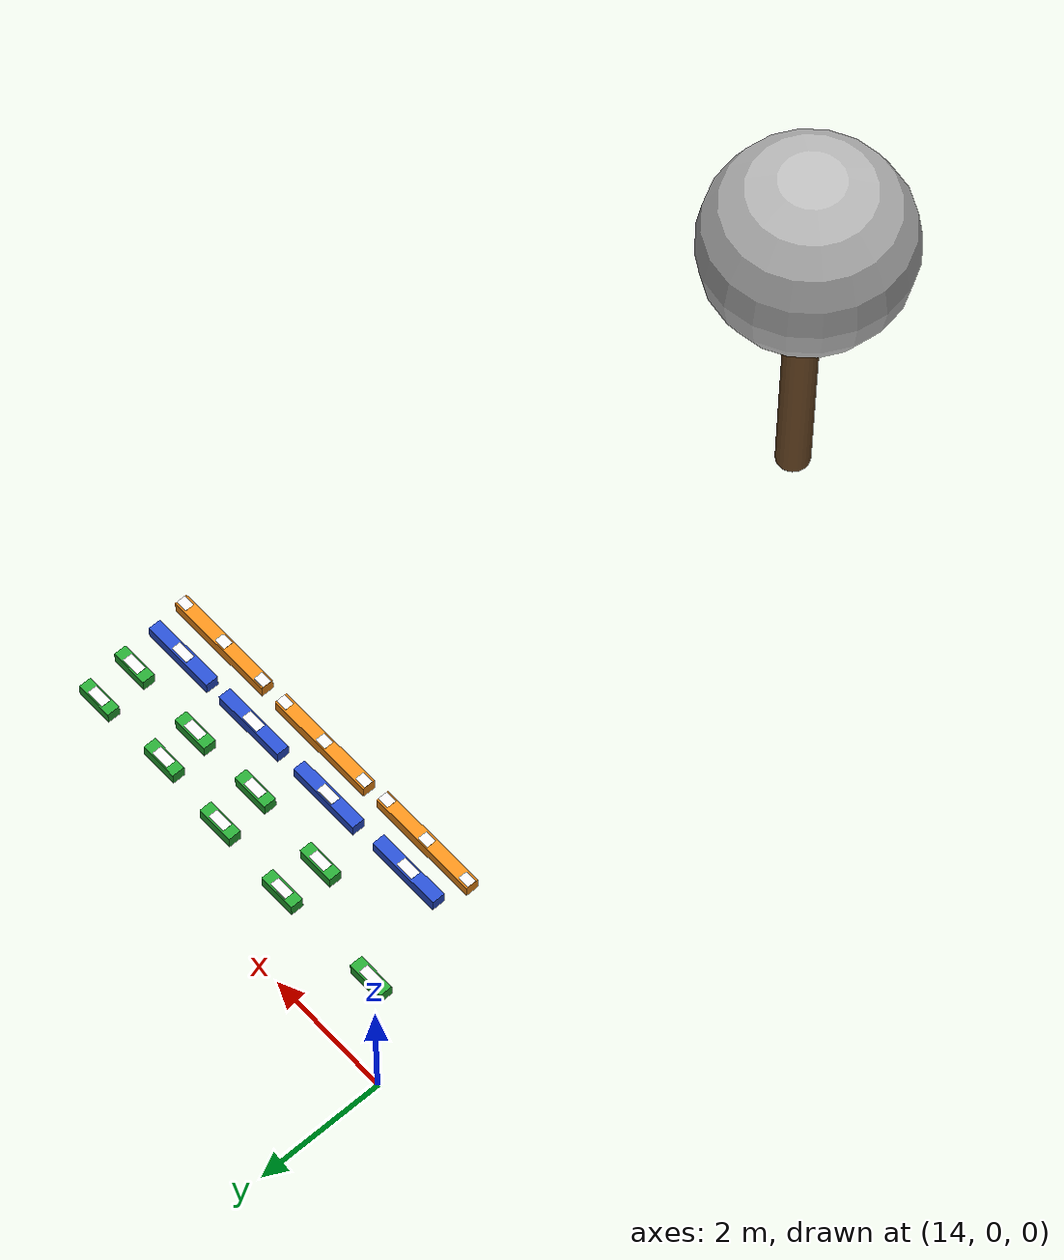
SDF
<sdf version="1.6">
 <world name="default">
  <model name="tree_simple_1">
   <static>1</static>
   <link name="link">
    <pose>0 0 0.1 0 -0 0</pose>
    <inertial>
     <mass>666</mass>
     <inertia>
      <ixx>0.0861167</ixx>
      <ixy>0</ixy>
      <ixz>0</ixz>
      <iyy>0.0861167</iyy>
      <iyz>0</iyz>
      <izz>0.0861167</izz>
     </inertia>
    </inertial>
    <collision name="collision_trunk">
     <pose>0 0 2 0 -0 0</pose>
     <geometry><cylinder><radius>0.25</radius><length>4</length></cylinder></geometry>
     <surface>
      <contact>
       <poissons_ratio>0.347</poissons_ratio>
       <elastic_modulus>8.8e+09</elastic_modulus>
       <ode><kp>100000</kp><kd>100</kd><max_vel>100</max_vel><min_depth>0.001</min_depth></ode>
      </contact>
      <friction>
       <torsional>
        <coefficient>1</coefficient>
        <use_patch_radius>0</use_patch_radius>
        <surface_radius>0.01</surface_radius>
       </torsional>
      </friction>
     </surface>
    </collision>
    <collision name="collision_treetop">
     <pose>0 0 5.2 0 -0 0</pose>
     <geometry><sphere><radius>1.5</radius></sphere></geometry>
     <surface>
      <contact>
       <poissons_ratio>0.347</poissons_ratio>
       <elastic_modulus>8.8e+09</elastic_modulus>
       <ode><kp>100000</kp><kd>100</kd><max_vel>100</max_vel><min_depth>0.001</min_depth></ode>
      </contact>
      <friction>
       <torsional>
        <coefficient>1</coefficient>
        <use_patch_radius>0</use_patch_radius>
        <surface_radius>0.01</surface_radius>
       </torsional>
      </friction>
     </surface>
    </collision>
    <visual name="trunk">
     <pose>0 0 2 0 -0 0</pose>
     <geometry><cylinder><radius>0.25</radius><length>4</length></cylinder></geometry>
     <material>
      <script>
       <uri>model://tree_simple/scripts</uri>
       <uri>model://tree_simple/materials/textures</uri>
       <name>TreeSimple/Trunk</name>
      </script>
     </material>
    </visual>
    <visual name="treetop">
     <pose>0 0 5.2 0 -0 0</pose>
     <geometry><sphere><radius>1.5</radius></sphere></geometry>
     <material>
      <script>
       <uri>model://tree_simple/scripts</uri>
       <uri>model://tree_simple/materials/textures</uri>
       <name>TreeSimple/Treetop</name>
      </script>
     </material>
    </visual>
   </link>
   <pose>17.4154 -10.567 0 0 -0 0</pose>
  </model>
  <model name="mbzirc_orange_brick_0">
   <static>0</static>
   <link name="link">
    <pose>0 0 0.1 0 -0 0</pose>
    <inertial>
     <mass>1.2</mass>
     <inertia>
      <ixx>0.007968</ixx>
      <ixy>0</ixy>
      <ixz>0</ixz>
      <iyy>0.326688</iyy>
      <iyz>0</iyz>
      <izz>0.326688</izz>
     </inertia>
    </inertial>
    <visual name="main_box">
     <geometry><box><size>1.8 0.2 0.2</size></box></geometry>
     <material>
      <script><uri>file://media/materials/scripts/gazebo.material</uri><name>Gazebo/Orange</name></script>
     </material>
    </visual>
    <visual name="white_plate_center">
     <pose>0 0 0.1 0 -0 0</pose>
     <geometry><box><size>0.19 0.15 0.006</size></box></geometry>
     <material>
      <script><uri>file://media/materials/scripts/gazebo.material</uri><name>Gazebo/White</name></script>
     </material>
    </visual>
    <visual name="white_plate_left">
     <pose>-0.805 0 0.1 0 -0 0</pose>
     <geometry><box><size>0.19 0.15 0.006</size></box></geometry>
     <material>
      <script><uri>file://media/materials/scripts/gazebo.material</uri><name>Gazebo/White</name></script>
     </material>
    </visual>
    <visual name="white_plate_right">
     <pose>0.805 0 0.1 0 -0 0</pose>
     <geometry><box><size>0.19 0.15 0.006</size></box></geometry>
     <material>
      <script><uri>file://media/materials/scripts/gazebo.material</uri><name>Gazebo/White</name></script>
     </material>
    </visual>
    <collision name="collision"><geometry><box><size>1.8 0.2 0.2</size></box></geometry></collision>
   </link>
   <pose>16.2189 -2.79877 -5.3e-05 -0.000474 -0 -0.000656</pose>
  </model>
  <model name="mbzirc_orange_brick_1">
   <static>0</static>
   <link name="link">
    <pose>0 0 0.1 0 -0 0</pose>
    <inertial>
     <mass>1.2</mass>
     <inertia>
      <ixx>0.007968</ixx>
      <ixy>0</ixy>
      <ixz>0</ixz>
      <iyy>0.326688</iyy>
      <iyz>0</iyz>
      <izz>0.326688</izz>
     </inertia>
    </inertial>
    <visual name="main_box">
     <geometry><box><size>1.8 0.2 0.2</size></box></geometry>
     <material>
      <script><uri>file://media/materials/scripts/gazebo.material</uri><name>Gazebo/Orange</name></script>
     </material>
    </visual>
    <visual name="white_plate_center">
     <pose>0 0 0.1 0 -0 0</pose>
     <geometry><box><size>0.19 0.15 0.006</size></box></geometry>
     <material>
      <script><uri>file://media/materials/scripts/gazebo.material</uri><name>Gazebo/White</name></script>
     </material>
    </visual>
    <visual name="white_plate_left">
     <pose>-0.805 0 0.1 0 -0 0</pose>
     <geometry><box><size>0.19 0.15 0.006</size></box></geometry>
     <material>
      <script><uri>file://media/materials/scripts/gazebo.material</uri><name>Gazebo/White</name></script>
     </material>
    </visual>
    <visual name="white_plate_right">
     <pose>0.805 0 0.1 0 -0 0</pose>
     <geometry><box><size>0.19 0.15 0.006</size></box></geometry>
     <material>
      <script><uri>file://media/materials/scripts/gazebo.material</uri><name>Gazebo/White</name></script>
     </material>
    </visual>
    <collision name="collision"><geometry><box><size>1.8 0.2 0.2</size></box></geometry></collision>
   </link>
   <pose>18.2603 -2.76818 -5.3e-05 -0.000474 -0 0.001065</pose>
  </model>
  <model name="mbzirc_orange_brick_2">
   <static>0</static>
   <link name="link">
    <pose>0 0 0.1 0 -0 0</pose>
    <inertial>
     <mass>1.2</mass>
     <inertia>
      <ixx>0.007968</ixx>
      <ixy>0</ixy>
      <ixz>0</ixz>
      <iyy>0.326688</iyy>
      <iyz>0</iyz>
      <izz>0.326688</izz>
     </inertia>
    </inertial>
    <visual name="main_box">
     <geometry><box><size>1.8 0.2 0.2</size></box></geometry>
     <material>
      <script><uri>file://media/materials/scripts/gazebo.material</uri><name>Gazebo/Orange</name></script>
     </material>
    </visual>
    <visual name="white_plate_center">
     <pose>0 0 0.1 0 -0 0</pose>
     <geometry><box><size>0.19 0.15 0.006</size></box></geometry>
     <material>
      <script><uri>file://media/materials/scripts/gazebo.material</uri><name>Gazebo/White</name></script>
     </material>
    </visual>
    <visual name="white_plate_left">
     <pose>-0.805 0 0.1 0 -0 0</pose>
     <geometry><box><size>0.19 0.15 0.006</size></box></geometry>
     <material>
      <script><uri>file://media/materials/scripts/gazebo.material</uri><name>Gazebo/White</name></script>
     </material>
    </visual>
    <visual name="white_plate_right">
     <pose>0.805 0 0.1 0 -0 0</pose>
     <geometry><box><size>0.19 0.15 0.006</size></box></geometry>
     <material>
      <script><uri>file://media/materials/scripts/gazebo.material</uri><name>Gazebo/White</name></script>
     </material>
    </visual>
    <collision name="collision"><geometry><box><size>1.8 0.2 0.2</size></box></geometry></collision>
   </link>
   <pose>20.3372 -2.76467 -5.3e-05 0.000474 -0 0.00076</pose>
  </model>
  <model name="mbzirc_blue_brick">
   <static>0</static>
   <link name="link">
    <pose>0 0 0.1 0 -0 0</pose>
    <inertial>
     <mass>0.381</mass>
     <inertia>
      <ixx>0.00252984</ixx>
      <ixy>0</ixy>
      <ixz>0</ixz>
      <iyy>0.046802</iyy>
      <iyz>0</iyz>
      <izz>0.046802</izz>
     </inertia>
    </inertial>
    <visual name="main_box">
     <geometry><box><size>1.2 0.2 0.2</size></box></geometry>
     <material>
      <script><uri>file://media/materials/scripts/gazebo.material</uri><name>Gazebo/Blue</name></script>
     </material>
    </visual>
    <visual name="white_plate">
     <pose>0 0 0.1 0 -0 0</pose>
     <geometry><box><size>0.3 0.15 0.006</size></box></geometry>
     <material>
      <script><uri>file://media/materials/scripts/gazebo.material</uri><name>Gazebo/White</name></script>
     </material>
    </visual>
    <collision name="collision"><geometry><box><size>1.2 0.2 0.2</size></box></geometry></collision>
   </link>
   <pose>20.5722 -2.24389 -5.3e-05 -0.000475 -0 0.001008</pose>
  </model>
  <model name="mbzirc_blue_brick_0">
   <static>0</static>
   <link name="link">
    <pose>0 0 0.1 0 -0 0</pose>
    <inertial>
     <mass>0.381</mass>
     <inertia>
      <ixx>0.00252984</ixx>
      <ixy>0</ixy>
      <ixz>0</ixz>
      <iyy>0.046802</iyy>
      <iyz>0</iyz>
      <izz>0.046802</izz>
     </inertia>
    </inertial>
    <visual name="main_box">
     <geometry><box><size>1.2 0.2 0.2</size></box></geometry>
     <material>
      <script><uri>file://media/materials/scripts/gazebo.material</uri><name>Gazebo/Blue</name></script>
     </material>
    </visual>
    <visual name="white_plate">
     <pose>0 0 0.1 0 -0 0</pose>
     <geometry><box><size>0.3 0.15 0.006</size></box></geometry>
     <material>
      <script><uri>file://media/materials/scripts/gazebo.material</uri><name>Gazebo/White</name></script>
     </material>
    </visual>
    <collision name="collision"><geometry><box><size>1.2 0.2 0.2</size></box></geometry></collision>
   </link>
   <pose>19.1239 -2.2571 -5.3e-05 0.000475 -0 0.000988</pose>
  </model>
  <model name="mbzirc_blue_brick_1">
   <static>0</static>
   <link name="link">
    <pose>0 0 0.1 0 -0 0</pose>
    <inertial>
     <mass>0.381</mass>
     <inertia>
      <ixx>0.00252984</ixx>
      <ixy>0</ixy>
      <ixz>0</ixz>
      <iyy>0.046802</iyy>
      <iyz>0</iyz>
      <izz>0.046802</izz>
     </inertia>
    </inertial>
    <visual name="main_box">
     <geometry><box><size>1.2 0.2 0.2</size></box></geometry>
     <material>
      <script><uri>file://media/materials/scripts/gazebo.material</uri><name>Gazebo/Blue</name></script>
     </material>
    </visual>
    <visual name="white_plate">
     <pose>0 0 0.1 0 -0 0</pose>
     <geometry><box><size>0.3 0.15 0.006</size></box></geometry>
     <material>
      <script><uri>file://media/materials/scripts/gazebo.material</uri><name>Gazebo/White</name></script>
     </material>
    </visual>
    <collision name="collision"><geometry><box><size>1.2 0.2 0.2</size></box></geometry></collision>
   </link>
   <pose>17.6106 -2.27652 -5.3e-05 -0.000475 -0 0.000973</pose>
  </model>
  <model name="mbzirc_blue_brick_2">
   <static>0</static>
   <link name="link">
    <pose>0 0 0.1 0 -0 0</pose>
    <inertial>
     <mass>0.381</mass>
     <inertia>
      <ixx>0.00252984</ixx>
      <ixy>0</ixy>
      <ixz>0</ixz>
      <iyy>0.046802</iyy>
      <iyz>0</iyz>
      <izz>0.046802</izz>
     </inertia>
    </inertial>
    <visual name="main_box">
     <geometry><box><size>1.2 0.2 0.2</size></box></geometry>
     <material>
      <script><uri>file://media/materials/scripts/gazebo.material</uri><name>Gazebo/Blue</name></script>
     </material>
    </visual>
    <visual name="white_plate">
     <pose>0 0 0.1 0 -0 0</pose>
     <geometry><box><size>0.3 0.15 0.006</size></box></geometry>
     <material>
      <script><uri>file://media/materials/scripts/gazebo.material</uri><name>Gazebo/White</name></script>
     </material>
    </visual>
    <collision name="collision"><geometry><box><size>1.2 0.2 0.2</size></box></geometry></collision>
   </link>
   <pose>16.0556 -2.32743 -5.3e-05 0.000475 -0 0.000621</pose>
  </model>
  <model name="mbzirc_green_brick">
   <static>0</static>
   <link name="link">
    <pose>0 0 0.1 0 -0 0</pose>
    <inertial>
     <mass>0.485</mass>
     <inertia>
      <ixx>0.00322</ixx>
      <ixy>0</ixy>
      <ixz>0</ixz>
      <iyy>0.016102</iyy>
      <iyz>0</iyz>
      <izz>0.016102</izz>
     </inertia>
    </inertial>
    <visual name="main_box">
     <geometry><box><size>0.6 0.2 0.2</size></box></geometry>
     <material>
      <script><uri>file://media/materials/scripts/gazebo.material</uri><name>Gazebo/Green</name></script>
     </material>
    </visual>
    <visual name="white_plate">
     <pose>0 0 0.1 0 -0 0</pose>
     <geometry><box><size>0.3 0.15 0.006</size></box></geometry>
     <material>
      <script><uri>file://media/materials/scripts/gazebo.material</uri><name>Gazebo/White</name></script>
     </material>
    </visual>
    <collision name="collision"><geometry><box><size>0.6 0.2 0.2</size></box></geometry></collision>
   </link>
   <pose>20.8728 -1.63719 0 0.000121 -0 -3e-06</pose>
  </model>
  <model name="mbzirc_green_brick_0">
   <static>0</static>
   <link name="link">
    <pose>0 0 0.1 0 -0 0</pose>
    <inertial>
     <mass>0.485</mass>
     <inertia>
      <ixx>0.00322</ixx>
      <ixy>0</ixy>
      <ixz>0</ixz>
      <iyy>0.016102</iyy>
      <iyz>0</iyz>
      <izz>0.016102</izz>
     </inertia>
    </inertial>
    <visual name="main_box">
     <geometry><box><size>0.6 0.2 0.2</size></box></geometry>
     <material>
      <script><uri>file://media/materials/scripts/gazebo.material</uri><name>Gazebo/Green</name></script>
     </material>
    </visual>
    <visual name="white_plate">
     <pose>0 0 0.1 0 -0 0</pose>
     <geometry><box><size>0.3 0.15 0.006</size></box></geometry>
     <material>
      <script><uri>file://media/materials/scripts/gazebo.material</uri><name>Gazebo/White</name></script>
     </material>
    </visual>
    <collision name="collision"><geometry><box><size>0.6 0.2 0.2</size></box></geometry></collision>
   </link>
   <pose>19.5458 -1.58948 -5.3e-05 0.000482 -1e-06 0</pose>
  </model>
  <model name="mbzirc_green_brick_2">
   <static>0</static>
   <link name="link">
    <pose>0 0 0.1 0 -0 0</pose>
    <inertial>
     <mass>0.485</mass>
     <inertia>
      <ixx>0.00322</ixx>
      <ixy>0</ixy>
      <ixz>0</ixz>
      <iyy>0.016102</iyy>
      <iyz>0</iyz>
      <izz>0.016102</izz>
     </inertia>
    </inertial>
    <visual name="main_box">
     <geometry><box><size>0.6 0.2 0.2</size></box></geometry>
     <material>
      <script><uri>file://media/materials/scripts/gazebo.material</uri><name>Gazebo/Green</name></script>
     </material>
    </visual>
    <visual name="white_plate">
     <pose>0 0 0.1 0 -0 0</pose>
     <geometry><box><size>0.3 0.15 0.006</size></box></geometry>
     <material>
      <script><uri>file://media/materials/scripts/gazebo.material</uri><name>Gazebo/White</name></script>
     </material>
    </visual>
    <collision name="collision"><geometry><box><size>0.6 0.2 0.2</size></box></geometry></collision>
   </link>
   <pose>18.3299 -1.60984 0 0.000121 -0 -3e-06</pose>
  </model>
  <model name="mbzirc_green_brick_4">
   <static>0</static>
   <link name="link">
    <pose>0 0 0.1 0 -0 0</pose>
    <inertial>
     <mass>0.485</mass>
     <inertia>
      <ixx>0.00322</ixx>
      <ixy>0</ixy>
      <ixz>0</ixz>
      <iyy>0.016102</iyy>
      <iyz>0</iyz>
      <izz>0.016102</izz>
     </inertia>
    </inertial>
    <visual name="main_box">
     <geometry><box><size>0.6 0.2 0.2</size></box></geometry>
     <material>
      <script><uri>file://media/materials/scripts/gazebo.material</uri><name>Gazebo/Green</name></script>
     </material>
    </visual>
    <visual name="white_plate">
     <pose>0 0 0.1 0 -0 0</pose>
     <geometry><box><size>0.3 0.15 0.006</size></box></geometry>
     <material>
      <script><uri>file://media/materials/scripts/gazebo.material</uri><name>Gazebo/White</name></script>
     </material>
    </visual>
    <collision name="collision"><geometry><box><size>0.6 0.2 0.2</size></box></geometry></collision>
   </link>
   <pose>16.918 -1.53718 -5.3e-05 -0.000482 -1e-06 0</pose>
  </model>
  <model name="mbzirc_green_brick_5">
   <static>0</static>
   <link name="link">
    <pose>0 0 0.1 0 -0 0</pose>
    <inertial>
     <mass>0.485</mass>
     <inertia>
      <ixx>0.00322</ixx>
      <ixy>0</ixy>
      <ixz>0</ixz>
      <iyy>0.016102</iyy>
      <iyz>0</iyz>
      <izz>0.016102</izz>
     </inertia>
    </inertial>
    <visual name="main_box">
     <geometry><box><size>0.6 0.2 0.2</size></box></geometry>
     <material>
      <script><uri>file://media/materials/scripts/gazebo.material</uri><name>Gazebo/Green</name></script>
     </material>
    </visual>
    <visual name="white_plate">
     <pose>0 0 0.1 0 -0 0</pose>
     <geometry><box><size>0.3 0.15 0.006</size></box></geometry>
     <material>
      <script><uri>file://media/materials/scripts/gazebo.material</uri><name>Gazebo/White</name></script>
     </material>
    </visual>
    <collision name="collision"><geometry><box><size>0.6 0.2 0.2</size></box></geometry></collision>
   </link>
   <pose>20.8013 -0.961535 -5.3e-05 0.000482 -1e-06 0</pose>
  </model>
  <model name="mbzirc_green_brick_6">
   <static>0</static>
   <link name="link">
    <pose>0 0 0.1 0 -0 0</pose>
    <inertial>
     <mass>0.485</mass>
     <inertia>
      <ixx>0.00322</ixx>
      <ixy>0</ixy>
      <ixz>0</ixz>
      <iyy>0.016102</iyy>
      <iyz>0</iyz>
      <izz>0.016102</izz>
     </inertia>
    </inertial>
    <visual name="main_box">
     <geometry><box><size>0.6 0.2 0.2</size></box></geometry>
     <material>
      <script><uri>file://media/materials/scripts/gazebo.material</uri><name>Gazebo/Green</name></script>
     </material>
    </visual>
    <visual name="white_plate">
     <pose>0 0 0.1 0 -0 0</pose>
     <geometry><box><size>0.3 0.15 0.006</size></box></geometry>
     <material>
      <script><uri>file://media/materials/scripts/gazebo.material</uri><name>Gazebo/White</name></script>
     </material>
    </visual>
    <collision name="collision"><geometry><box><size>0.6 0.2 0.2</size></box></geometry></collision>
   </link>
   <pose>19.5031 -1.00633 0 0.000121 -0 -3e-06</pose>
  </model>
  <model name="mbzirc_green_brick_7">
   <static>0</static>
   <link name="link">
    <pose>0 0 0.1 0 -0 0</pose>
    <inertial>
     <mass>0.485</mass>
     <inertia>
      <ixx>0.00322</ixx>
      <ixy>0</ixy>
      <ixz>0</ixz>
      <iyy>0.016102</iyy>
      <iyz>0</iyz>
      <izz>0.016102</izz>
     </inertia>
    </inertial>
    <visual name="main_box">
     <geometry><box><size>0.6 0.2 0.2</size></box></geometry>
     <material>
      <script><uri>file://media/materials/scripts/gazebo.material</uri><name>Gazebo/Green</name></script>
     </material>
    </visual>
    <visual name="white_plate">
     <pose>0 0 0.1 0 -0 0</pose>
     <geometry><box><size>0.3 0.15 0.006</size></box></geometry>
     <material>
      <script><uri>file://media/materials/scripts/gazebo.material</uri><name>Gazebo/White</name></script>
     </material>
    </visual>
    <collision name="collision"><geometry><box><size>0.6 0.2 0.2</size></box></geometry></collision>
   </link>
   <pose>18.266 -0.940514 -5.3e-05 0.000482 -1e-06 0</pose>
  </model>
  <model name="mbzirc_green_brick_8">
   <static>0</static>
   <link name="link">
    <pose>0 0 0.1 0 -0 0</pose>
    <inertial>
     <mass>0.485</mass>
     <inertia>
      <ixx>0.00322</ixx>
      <ixy>0</ixy>
      <ixz>0</ixz>
      <iyy>0.016102</iyy>
      <iyz>0</iyz>
      <izz>0.016102</izz>
     </inertia>
    </inertial>
    <visual name="main_box">
     <geometry><box><size>0.6 0.2 0.2</size></box></geometry>
     <material>
      <script><uri>file://media/materials/scripts/gazebo.material</uri><name>Gazebo/Green</name></script>
     </material>
    </visual>
    <visual name="white_plate">
     <pose>0 0 0.1 0 -0 0</pose>
     <geometry><box><size>0.3 0.15 0.006</size></box></geometry>
     <material>
      <script><uri>file://media/materials/scripts/gazebo.material</uri><name>Gazebo/White</name></script>
     </material>
    </visual>
    <collision name="collision"><geometry><box><size>0.6 0.2 0.2</size></box></geometry></collision>
   </link>
   <pose>16.9424 -0.887346 0 -0.000121 -0 3e-06</pose>
  </model>
  <model name="mbzirc_green_brick_9">
   <static>0</static>
   <link name="link">
    <pose>0 0 0.1 0 -0 0</pose>
    <inertial>
     <mass>0.485</mass>
     <inertia>
      <ixx>0.00322</ixx>
      <ixy>0</ixy>
      <ixz>0</ixz>
      <iyy>0.016102</iyy>
      <iyz>0</iyz>
      <izz>0.016102</izz>
     </inertia>
    </inertial>
    <visual name="main_box">
     <geometry><box><size>0.6 0.2 0.2</size></box></geometry>
     <material>
      <script><uri>file://media/materials/scripts/gazebo.material</uri><name>Gazebo/Green</name></script>
     </material>
    </visual>
    <visual name="white_plate">
     <pose>0 0 0.1 0 -0 0</pose>
     <geometry><box><size>0.3 0.15 0.006</size></box></geometry>
     <material>
      <script><uri>file://media/materials/scripts/gazebo.material</uri><name>Gazebo/White</name></script>
     </material>
    </visual>
    <collision name="collision"><geometry><box><size>0.6 0.2 0.2</size></box></geometry></collision>
   </link>
   <pose>15.1823 -0.908757 0 -0.000121 -0 3e-06</pose>
  </model>
 </world>
</sdf>
